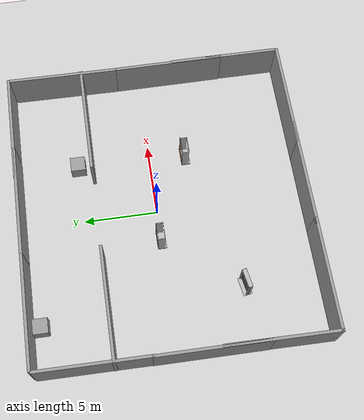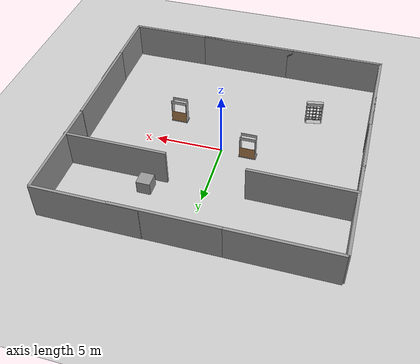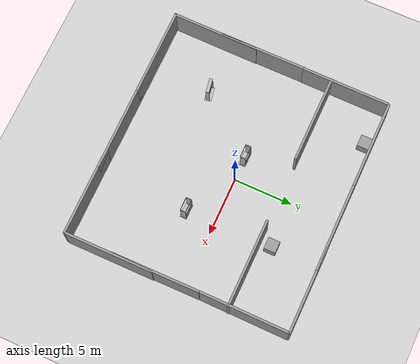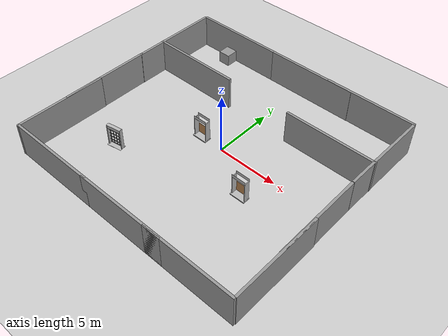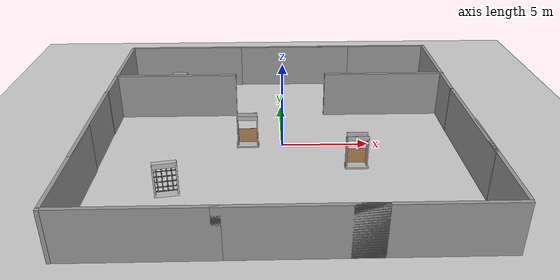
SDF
<sdf version="1.4">
 <world name="default">
  <light name="sun" type="directional">
   <pose>0 0 10 0 -0 0</pose>
   <diffuse>0.8 0.8 0.8 1</diffuse>
   <specular>0.2 0.2 0.2 1</specular>
   <attenuation>
    <range>1000</range>
    <constant>0.9</constant>
    <linear>0.01</linear>
    <quadratic>0.001</quadratic>
   </attenuation>
   <direction>-0.5 0.1 -0.9</direction>
  </light>
  <model name="ground_plane">
   <static>1</static>
   <link name="link">
    <collision name="collision">
     <geometry><plane><normal>0 0 1</normal><size>100 100</size></plane></geometry>
     <surface><friction><ode><mu>100</mu><mu2>50</mu2></ode></friction></surface>
    </collision>
    <visual name="visual">
     <cast_shadows>0</cast_shadows>
     <geometry><plane><normal>0 0 1</normal><size>100 100</size></plane></geometry>
     <material>
      <script><uri>file://media/materials/scripts/gazebo.material</uri><name>Gazebo/Grey</name></script>
     </material>
    </visual>
    <velocity_decay><linear>0</linear><angular>0</angular></velocity_decay>
   </link>
  </model>
  <physics type="ode">
   <max_step_size>0.001</max_step_size>
   <real_time_factor>1</real_time_factor>
   <real_time_update_rate>0</real_time_update_rate>
   <gravity>0 0 -9.8</gravity>
  </physics>
  <scene><ambient>0.4 0.4 0.4 1</ambient><background>0.7 0.7 0.7 1</background><shadows>1</shadows></scene>
  <spherical_coordinates>
   <surface_model>EARTH_WGS84</surface_model>
   <latitude_deg>0</latitude_deg>
   <longitude_deg>0</longitude_deg>
   <elevation>0</elevation>
   <heading_deg>0</heading_deg>
  </spherical_coordinates>
  <model name="grey_wall">
   <static>1</static>
   <link name="link">
    <pose>0 0 1.4 0 -0 0</pose>
    <collision name="collision"><geometry><box><size>7.5 0.2 2.8</size></box></geometry></collision>
    <visual name="visual">
     <cast_shadows>0</cast_shadows>
     <geometry><box><size>7.5 0.2 2.8</size></box></geometry>
     <material>
      <script>
       <uri>model://grey_wall/materials/scripts</uri>
       <uri>model://grey_wall/materials/textures</uri>
       <name>vrc/grey_wall</name>
      </script>
     </material>
    </visual>
    <velocity_decay><linear>0</linear><angular>0</angular></velocity_decay>
   </link>
   <pose>-6.37486 9.06322 0 0 -0 0</pose>
  </model>
  <model name="grey_wall_0">
   <static>1</static>
   <link name="link">
    <pose>0 0 1.4 0 -0 0</pose>
    <collision name="collision"><geometry><box><size>7.5 0.2 2.8</size></box></geometry></collision>
    <visual name="visual">
     <cast_shadows>0</cast_shadows>
     <geometry><box><size>7.5 0.2 2.8</size></box></geometry>
     <material>
      <script>
       <uri>model://grey_wall/materials/scripts</uri>
       <uri>model://grey_wall/materials/textures</uri>
       <name>vrc/grey_wall</name>
      </script>
     </material>
    </visual>
    <velocity_decay><linear>0</linear><angular>0</angular></velocity_decay>
   </link>
   <pose>1.12463 9.06218 0 0 -0 0</pose>
  </model>
  <model name="grey_wall_1">
   <static>1</static>
   <link name="link">
    <pose>0 0 1.4 0 -0 0</pose>
    <collision name="collision"><geometry><box><size>7.5 0.2 2.8</size></box></geometry></collision>
    <visual name="visual">
     <cast_shadows>0</cast_shadows>
     <geometry><box><size>7.5 0.2 2.8</size></box></geometry>
     <material>
      <script>
       <uri>model://grey_wall/materials/scripts</uri>
       <uri>model://grey_wall/materials/textures</uri>
       <name>vrc/grey_wall</name>
      </script>
     </material>
    </visual>
    <velocity_decay><linear>0</linear><angular>0</angular></velocity_decay>
   </link>
   <pose>6.47505 9.08721 0 0 -0 0</pose>
  </model>
  <model name="grey_wall_2">
   <static>1</static>
   <link name="link">
    <pose>0 0 1.4 0 -0 0</pose>
    <collision name="collision"><geometry><box><size>7.5 0.2 2.8</size></box></geometry></collision>
    <visual name="visual">
     <cast_shadows>0</cast_shadows>
     <geometry><box><size>7.5 0.2 2.8</size></box></geometry>
     <material>
      <script>
       <uri>model://grey_wall/materials/scripts</uri>
       <uri>model://grey_wall/materials/textures</uri>
       <name>vrc/grey_wall</name>
      </script>
     </material>
    </visual>
    <velocity_decay><linear>0</linear><angular>0</angular></velocity_decay>
   </link>
   <pose>-6.57172 -10 0 0 -0 0</pose>
  </model>
  <model name="grey_wall_3">
   <static>1</static>
   <link name="link">
    <pose>0 0 1.4 0 -0 0</pose>
    <collision name="collision"><geometry><box><size>7.5 0.2 2.8</size></box></geometry></collision>
    <visual name="visual">
     <cast_shadows>0</cast_shadows>
     <geometry><box><size>7.5 0.2 2.8</size></box></geometry>
     <material>
      <script>
       <uri>model://grey_wall/materials/scripts</uri>
       <uri>model://grey_wall/materials/textures</uri>
       <name>vrc/grey_wall</name>
      </script>
     </material>
    </visual>
    <velocity_decay><linear>0</linear><angular>0</angular></velocity_decay>
   </link>
   <pose>0.502464 -10 0 0 -0 0</pose>
  </model>
  <model name="grey_wall_4">
   <static>1</static>
   <link name="link">
    <pose>0 0 1.4 0 -0 0</pose>
    <collision name="collision"><geometry><box><size>7.5 0.2 2.8</size></box></geometry></collision>
    <visual name="visual">
     <cast_shadows>0</cast_shadows>
     <geometry><box><size>7.5 0.2 2.8</size></box></geometry>
     <material>
      <script>
       <uri>model://grey_wall/materials/scripts</uri>
       <uri>model://grey_wall/materials/textures</uri>
       <name>vrc/grey_wall</name>
      </script>
     </material>
    </visual>
    <velocity_decay><linear>0</linear><angular>0</angular></velocity_decay>
   </link>
   <pose>6.46119 -10 0 0 -0 0</pose>
  </model>
  <model name="grey_wall_5">
   <static>1</static>
   <link name="link">
    <pose>0 0 1.4 0 -0 0</pose>
    <collision name="collision"><geometry><box><size>7.5 0.2 2.8</size></box></geometry></collision>
    <visual name="visual">
     <cast_shadows>0</cast_shadows>
     <geometry><box><size>7.5 0.2 2.8</size></box></geometry>
     <material>
      <script>
       <uri>model://grey_wall/materials/scripts</uri>
       <uri>model://grey_wall/materials/textures</uri>
       <name>vrc/grey_wall</name>
      </script>
     </material>
    </visual>
    <velocity_decay><linear>0</linear><angular>0</angular></velocity_decay>
   </link>
   <pose>10.1266 5.31585 0 0 0 -1.58058</pose>
  </model>
  <model name="grey_wall_6">
   <static>1</static>
   <link name="link">
    <pose>0 0 1.4 0 -0 0</pose>
    <collision name="collision"><geometry><box><size>7.5 0.2 2.8</size></box></geometry></collision>
    <visual name="visual">
     <cast_shadows>0</cast_shadows>
     <geometry><box><size>7.5 0.2 2.8</size></box></geometry>
     <material>
      <script>
       <uri>model://grey_wall/materials/scripts</uri>
       <uri>model://grey_wall/materials/textures</uri>
       <name>vrc/grey_wall</name>
      </script>
     </material>
    </visual>
    <velocity_decay><linear>0</linear><angular>0</angular></velocity_decay>
   </link>
   <pose>10.1134 -2.21796 0 0 0 -1.566</pose>
  </model>
  <model name="grey_wall_7">
   <static>1</static>
   <link name="link">
    <pose>0 0 1.4 0 -0 0</pose>
    <collision name="collision"><geometry><box><size>7.5 0.2 2.8</size></box></geometry></collision>
    <visual name="visual">
     <cast_shadows>0</cast_shadows>
     <geometry><box><size>7.5 0.2 2.8</size></box></geometry>
     <material>
      <script>
       <uri>model://grey_wall/materials/scripts</uri>
       <uri>model://grey_wall/materials/textures</uri>
       <name>vrc/grey_wall</name>
      </script>
     </material>
    </visual>
    <velocity_decay><linear>0</linear><angular>0</angular></velocity_decay>
   </link>
   <pose>10.161 -6.18012 0 0 -0 1.5699</pose>
  </model>
  <model name="grey_wall_8">
   <static>1</static>
   <link name="link">
    <pose>0 0 1.4 0 -0 0</pose>
    <collision name="collision"><geometry><box><size>7.5 0.2 2.8</size></box></geometry></collision>
    <visual name="visual">
     <cast_shadows>0</cast_shadows>
     <geometry><box><size>7.5 0.2 2.8</size></box></geometry>
     <material>
      <script>
       <uri>model://grey_wall/materials/scripts</uri>
       <uri>model://grey_wall/materials/textures</uri>
       <name>vrc/grey_wall</name>
      </script>
     </material>
    </visual>
    <velocity_decay><linear>0</linear><angular>0</angular></velocity_decay>
   </link>
   <pose>-10.1642 5.26629 0 0 0 -1.57839</pose>
  </model>
  <model name="grey_wall_9">
   <static>1</static>
   <link name="link">
    <pose>0 0 1.4 0 -0 0</pose>
    <collision name="collision"><geometry><box><size>7.5 0.2 2.8</size></box></geometry></collision>
    <visual name="visual">
     <cast_shadows>0</cast_shadows>
     <geometry><box><size>7.5 0.2 2.8</size></box></geometry>
     <material>
      <script>
       <uri>model://grey_wall/materials/scripts</uri>
       <uri>model://grey_wall/materials/textures</uri>
       <name>vrc/grey_wall</name>
      </script>
     </material>
    </visual>
    <velocity_decay><linear>0</linear><angular>0</angular></velocity_decay>
   </link>
   <pose>-10.2248 -2.07732 0 0 0 -1.57362</pose>
  </model>
  <model name="grey_wall_10">
   <static>1</static>
   <link name="link">
    <pose>0 0 1.4 0 -0 0</pose>
    <collision name="collision"><geometry><box><size>7.5 0.2 2.8</size></box></geometry></collision>
    <visual name="visual">
     <cast_shadows>0</cast_shadows>
     <geometry><box><size>7.5 0.2 2.8</size></box></geometry>
     <material>
      <script>
       <uri>model://grey_wall/materials/scripts</uri>
       <uri>model://grey_wall/materials/textures</uri>
       <name>vrc/grey_wall</name>
      </script>
     </material>
    </visual>
    <velocity_decay><linear>0</linear><angular>0</angular></velocity_decay>
   </link>
   <pose>-10.2268 -6.36026 -0 0 0 -1.58184</pose>
  </model>
  <model name="grey_wall_11">
   <static>1</static>
   <link name="link">
    <pose>0 0 1.4 0 -0 0</pose>
    <collision name="collision"><geometry><box><size>7.5 0.2 2.8</size></box></geometry></collision>
    <visual name="visual">
     <cast_shadows>0</cast_shadows>
     <geometry><box><size>7.5 0.2 2.8</size></box></geometry>
     <material>
      <script>
       <uri>model://grey_wall/materials/scripts</uri>
       <uri>model://grey_wall/materials/textures</uri>
       <name>vrc/grey_wall</name>
      </script>
     </material>
    </visual>
    <velocity_decay><linear>0</linear><angular>0</angular></velocity_decay>
   </link>
   <pose>-6.53777 4 0 0 -0 0</pose>
  </model>
  <model name="grey_wall_12">
   <static>1</static>
   <link name="link">
    <pose>0 0 1.4 0 -0 0</pose>
    <collision name="collision"><geometry><box><size>7.5 0.2 2.8</size></box></geometry></collision>
    <visual name="visual">
     <cast_shadows>0</cast_shadows>
     <geometry><box><size>7.5 0.2 2.8</size></box></geometry>
     <material>
      <script>
       <uri>model://grey_wall/materials/scripts</uri>
       <uri>model://grey_wall/materials/textures</uri>
       <name>vrc/grey_wall</name>
      </script>
     </material>
    </visual>
    <velocity_decay><linear>0</linear><angular>0</angular></velocity_decay>
   </link>
   <pose>6.50522 4 0 0 -0 0</pose>
  </model>
  <model name="frc2016_drawbridge">
   <link name="base">
    <inertial>
     <mass>10</mass>
     <pose>0 0 1 0 -0 0</pose>
     <inertia><ixx>3.64907</ixx><ixy>0</ixy><ixz>0</ixz><iyy>4.67075</iyy><iyz>0</iyz><izz>1.66649</izz></inertia>
    </inertial>
    <visual name="platform">
     <pose>0 0 0.0425 0 -0 0</pose>
     <geometry><box><size>1.27 0.5969 0.085</size></box></geometry>
    </visual>
    <collision name="platform">
     <pose>0 0 0.0425 0 -0 0</pose>
     <geometry><box><size>1.27 0.5969 0.085</size></box></geometry>
    </collision>
    <visual name="right_wall">
     <pose>0.55879 0.04444 0.889 0 -0 0</pose>
     <geometry><box><size>0.05715 0.45698 1.77165</size></box></geometry>
    </visual>
    <collision name="right_wall">
     <pose>0.55879 0.04444 0.889 0 -0 0</pose>
     <geometry><box><size>0.05715 0.45698 1.77165</size></box></geometry>
    </collision>
    <visual name="left_wall">
     <pose>-0.55879 0.04444 0.889 0 -0 0</pose>
     <geometry><box><size>0.05715 0.45698 1.77165</size></box></geometry>
    </visual>
    <collision name="left_wall">
     <pose>-0.55879 0.04444 0.889 0 -0 0</pose>
     <geometry><box><size>0.05715 0.45698 1.77165</size></box></geometry>
    </collision>
    <visual name="front_upper_wall">
     <pose>0 0.27611 1.84286 0 -0 0</pose>
     <geometry><box><size>1.1557 0.006347 0.254</size></box></geometry>
    </visual>
    <collision name="front_upper_wall">
     <pose>0 0.27611 1.84286 0 -0 0</pose>
     <geometry><box><size>1.1557 0.006347 0.254</size></box></geometry>
    </collision>
    <visual name="back_upper_wall">
     <pose>0 -0.18722 1.84286 0 -0 0</pose>
     <geometry><box><size>1.1557 0.006347 0.254</size></box></geometry>
    </visual>
    <collision name="back_upper_wall">
     <pose>0 -0.18722 1.84286 0 -0 0</pose>
     <geometry><box><size>1.1557 0.006347 0.254</size></box></geometry>
    </collision>
    <velocity_decay><linear>0</linear><angular>0</angular></velocity_decay>
   </link>
   <link name="bridge">
    <pose>0 0.28245 0.50577 0 -0 0</pose>
    <inertial>
     <mass>2</mass>
     <pose>0 -0.28245 -0.50577 0 -0 0</pose>
     <inertia>
      <ixx>0.139361</ixx>
      <ixy>0</ixy>
      <ixz>0</ixz>
      <iyy>0.357088</iyy>
      <iyz>0</iyz>
      <izz>0.217741</izz>
     </inertia>
    </inertial>
    <visual name="visual">
     <geometry><box><size>1.14298 0.006347 0.9144</size></box></geometry>
     <material><script><name>Gazebo/WoodFloor</name><uri>__default__</uri></script></material>
    </visual>
    <collision name="collision"><geometry><box><size>1.14298 0.006347 0.9144</size></box></geometry></collision>
    <velocity_decay><linear>0</linear><angular>0</angular></velocity_decay>
   </link>
   <joint name="bridge_joint" type="revolute">
    <pose>0 0 -0.4172 0 -0 0</pose>
    <parent>base</parent>
    <child>bridge</child>
    <axis><xyz>1 0 0</xyz><limit><lower>-2</lower><upper>0</upper></limit></axis>
   </joint>
   <pose>-1.99989 -0.00078 1e-06 8.27181e-25 -1e-06 0.004125</pose>
   <static>0</static>
  </model>
  <model name="frc2016_drawbridge_0">
   <link name="base">
    <inertial>
     <mass>10</mass>
     <pose>0 0 1 0 -0 0</pose>
     <inertia><ixx>3.64907</ixx><ixy>0</ixy><ixz>0</ixz><iyy>4.67075</iyy><iyz>0</iyz><izz>1.66649</izz></inertia>
    </inertial>
    <visual name="platform">
     <pose>0 0 0.0425 0 -0 0</pose>
     <geometry><box><size>1.27 0.5969 0.085</size></box></geometry>
    </visual>
    <collision name="platform">
     <pose>0 0 0.0425 0 -0 0</pose>
     <geometry><box><size>1.27 0.5969 0.085</size></box></geometry>
    </collision>
    <visual name="right_wall">
     <pose>0.55879 0.04444 0.889 0 -0 0</pose>
     <geometry><box><size>0.05715 0.45698 1.77165</size></box></geometry>
    </visual>
    <collision name="right_wall">
     <pose>0.55879 0.04444 0.889 0 -0 0</pose>
     <geometry><box><size>0.05715 0.45698 1.77165</size></box></geometry>
    </collision>
    <visual name="left_wall">
     <pose>-0.55879 0.04444 0.889 0 -0 0</pose>
     <geometry><box><size>0.05715 0.45698 1.77165</size></box></geometry>
    </visual>
    <collision name="left_wall">
     <pose>-0.55879 0.04444 0.889 0 -0 0</pose>
     <geometry><box><size>0.05715 0.45698 1.77165</size></box></geometry>
    </collision>
    <visual name="front_upper_wall">
     <pose>0 0.27611 1.84286 0 -0 0</pose>
     <geometry><box><size>1.1557 0.006347 0.254</size></box></geometry>
    </visual>
    <collision name="front_upper_wall">
     <pose>0 0.27611 1.84286 0 -0 0</pose>
     <geometry><box><size>1.1557 0.006347 0.254</size></box></geometry>
    </collision>
    <visual name="back_upper_wall">
     <pose>0 -0.18722 1.84286 0 -0 0</pose>
     <geometry><box><size>1.1557 0.006347 0.254</size></box></geometry>
    </visual>
    <collision name="back_upper_wall">
     <pose>0 -0.18722 1.84286 0 -0 0</pose>
     <geometry><box><size>1.1557 0.006347 0.254</size></box></geometry>
    </collision>
    <velocity_decay><linear>0</linear><angular>0</angular></velocity_decay>
   </link>
   <link name="bridge">
    <pose>0 0.28245 0.50577 0 -0 0</pose>
    <inertial>
     <mass>2</mass>
     <pose>0 -0.28245 -0.50577 0 -0 0</pose>
     <inertia>
      <ixx>0.139361</ixx>
      <ixy>0</ixy>
      <ixz>0</ixz>
      <iyy>0.357088</iyy>
      <iyz>0</iyz>
      <izz>0.217741</izz>
     </inertia>
    </inertial>
    <visual name="visual">
     <geometry><box><size>1.14298 0.006347 0.9144</size></box></geometry>
     <material><script><name>Gazebo/WoodFloor</name><uri>__default__</uri></script></material>
    </visual>
    <collision name="collision"><geometry><box><size>1.14298 0.006347 0.9144</size></box></geometry></collision>
    <velocity_decay><linear>0</linear><angular>0</angular></velocity_decay>
   </link>
   <joint name="bridge_joint" type="revolute">
    <pose>0 0 -0.4172 0 -0 0</pose>
    <parent>base</parent>
    <child>bridge</child>
    <axis><xyz>1 0 0</xyz><limit><lower>-2</lower><upper>0</upper></limit></axis>
   </joint>
   <pose>3.99908 -2.50384 0 -4.1359e-25 -1e-06 0.003646</pose>
   <static>0</static>
  </model>
  <model name="frc2016_portcullis">
   <link name="base">
    <inertial>
     <mass>50</mass>
     <pose>0 0 1.02941 0 -0 0</pose>
     <inertia><ixx>3.81711</ixx><ixy>0</ixy><ixz>0</ixz><iyy>4.87698</iyy><iyz>0</iyz><izz>1.6283</izz></inertia>
    </inertial>
    <visual name="platform">
     <pose>0 0 0.07284 0 -0 0</pose>
     <geometry><box><size>1.27 0.5842 0.003175</size></box></geometry>
    </visual>
    <collision name="platform">
     <pose>0 0 0.07284 0 -0 0</pose>
     <geometry><box><size>1.27 0.5842 0.003175</size></box></geometry>
    </collision>
    <visual name="left_column">
     <pose>0.59284 0 0.99042 0 -0 0</pose>
     <geometry><box><size>0.08375 0.28575 1.83198</size></box></geometry>
    </visual>
    <collision name="left_column">
     <pose>0.59284 0 0.99042 0 -0 0</pose>
     <geometry><box><size>0.08375 0.28575 1.83198</size></box></geometry>
    </collision>
    <visual name="right_column">
     <pose>-0.57759 0 0.99042 0 -0 0</pose>
     <geometry><box><size>0.08375 0.28575 1.83198</size></box></geometry>
    </visual>
    <collision name="right_column">
     <pose>-0.57759 0 0.99042 0 -0 0</pose>
     <geometry><box><size>0.08375 0.28575 1.83198</size></box></geometry>
    </collision>
    <visual name="top">
     <pose>-0.00034 0 1.77722 0 -0 0</pose>
     <geometry><box><size>1.22962 0.28575 0.26657</size></box></geometry>
    </visual>
    <collision name="top">
     <pose>-0.00034 0 1.77722 0 -0 0</pose>
     <geometry><box><size>1.22962 0.28575 0.26657</size></box></geometry>
    </collision>
    <visual name="castor1">
     <pose>-0.45651 -0.16234 0.03272 0 -0 0</pose>
     <geometry><sphere><radius>0.03272</radius></sphere></geometry>
    </visual>
    <collision name="castor1">
     <pose>-0.45651 -0.16234 0.03272 0 -0 0</pose>
     <geometry><sphere><radius>0.03272</radius></sphere></geometry>
    </collision>
    <visual name="castor2">
     <pose>-0.27883 0.21836 0.03272 0 -0 0</pose>
     <geometry><sphere><radius>0.03272</radius></sphere></geometry>
    </visual>
    <collision name="castor2">
     <pose>-0.27883 0.21836 0.03272 0 -0 0</pose>
     <geometry><sphere><radius>0.03272</radius></sphere></geometry>
    </collision>
    <visual name="castor3">
     <pose>0.28083 0.21906 0.03272 0 -0 0</pose>
     <geometry><sphere><radius>0.03272</radius></sphere></geometry>
    </visual>
    <collision name="castor3">
     <pose>0.28083 0.21906 0.03272 0 -0 0</pose>
     <geometry><sphere><radius>0.03272</radius></sphere></geometry>
    </collision>
    <visual name="castor4">
     <pose>0.45871 -0.16186 0.03272 0 -0 0</pose>
     <geometry><sphere><radius>0.03272</radius></sphere></geometry>
    </visual>
    <collision name="castor4">
     <pose>0.45871 -0.16186 0.03272 0 -0 0</pose>
     <geometry><sphere><radius>0.03272</radius></sphere></geometry>
    </collision>
    <velocity_decay><linear>0</linear><angular>0</angular></velocity_decay>
   </link>
   <link name="gate">
    <pose>-0.0287 0.02885 0.93327 0 -0 0</pose>
    <inertial>
     <mass>2</mass>
     <inertia><ixx>3.81711</ixx><ixy>0</ixy><ixz>0</ixz><iyy>4.87698</iyy><iyz>0</iyz><izz>1.6283</izz></inertia>
    </inertial>
    <collision name="collision"><geometry><box><size>1.1938 0.02496 1.45732</size></box></geometry></collision>
    <visual name="horz_1">
     <pose>0 0 -0.70326 0 -0 0</pose>
     <geometry><box><size>1.1938 0.02496 0.0508</size></box></geometry>
     <material><ambient>0.4 0.4 0.4 1</ambient><diffuse>0.4 0.4 0.4 1</diffuse></material>
    </visual>
    <visual name="horz_2">
     <pose>0 0 -0.44926 0 -0 0</pose>
     <geometry><box><size>1.1938 0.02496 0.0508</size></box></geometry>
     <material><ambient>0.4 0.4 0.4 1</ambient><diffuse>0.4 0.4 0.4 1</diffuse></material>
    </visual>
    <visual name="horz_3">
     <pose>0 0 -0.14517 0 -0 0</pose>
     <geometry><box><size>1.1938 0.02496 0.0508</size></box></geometry>
     <material><ambient>0.4 0.4 0.4 1</ambient><diffuse>0.4 0.4 0.4 1</diffuse></material>
    </visual>
    <visual name="horz_4">
     <pose>0 0 0.16034 0 -0 0</pose>
     <geometry><box><size>1.1938 0.02496 0.0508</size></box></geometry>
     <material><ambient>0.4 0.4 0.4 1</ambient><diffuse>0.4 0.4 0.4 1</diffuse></material>
    </visual>
    <visual name="horz_5">
     <pose>0 0 0.46514 0 -0 0</pose>
     <geometry><box><size>1.1938 0.02496 0.0508</size></box></geometry>
     <material><ambient>0.4 0.4 0.4 1</ambient><diffuse>0.4 0.4 0.4 1</diffuse></material>
    </visual>
    <visual name="horz_6">
     <pose>0 0 0.72994 0 -0 0</pose>
     <geometry><box><size>1.1938 0.02496 0.0508</size></box></geometry>
     <material><ambient>0.4 0.4 0.4 1</ambient><diffuse>0.4 0.4 0.4 1</diffuse></material>
    </visual>
    <visual name="vert_1">
     <pose>-0.58448 0 0 0 -0 0</pose>
     <geometry><box><size>0.02495 0.02496 1.45732</size></box></geometry>
     <material><ambient>0.4 0.4 0.4 1</ambient><diffuse>0.4 0.4 0.4 1</diffuse></material>
    </visual>
    <visual name="vert_2">
     <pose>-0.38128 0 0 0 -0 0</pose>
     <geometry><box><size>0.0508 0.02496 1.45732</size></box></geometry>
     <material><ambient>0.4 0.4 0.4 1</ambient><diffuse>0.4 0.4 0.4 1</diffuse></material>
    </visual>
    <visual name="vert_3">
     <pose>-0.12728 0 0 0 -0 0</pose>
     <geometry><box><size>0.0508 0.02496 1.45732</size></box></geometry>
     <material><ambient>0.4 0.4 0.4 1</ambient><diffuse>0.4 0.4 0.4 1</diffuse></material>
    </visual>
    <visual name="vert_4">
     <pose>0.12672 0 0 0 -0 0</pose>
     <geometry><box><size>0.0508 0.02496 1.45732</size></box></geometry>
     <material><ambient>0.4 0.4 0.4 1</ambient><diffuse>0.4 0.4 0.4 1</diffuse></material>
    </visual>
    <visual name="vert_5">
     <pose>0.38072 0 0 0 -0 0</pose>
     <geometry><box><size>0.0508 0.02496 1.45732</size></box></geometry>
     <material><ambient>0.4 0.4 0.4 1</ambient><diffuse>0.4 0.4 0.4 1</diffuse></material>
    </visual>
    <visual name="vert_6">
     <pose>0.58392 0 0 0 -0 0</pose>
     <geometry><box><size>0.02495 0.02496 1.45732</size></box></geometry>
     <material><ambient>0.4 0.4 0.4 1</ambient><diffuse>0.4 0.4 0.4 1</diffuse></material>
    </visual>
    <velocity_decay><linear>0</linear><angular>0</angular></velocity_decay>
   </link>
   <joint name="joint" type="prismatic">
    <parent>base</parent>
    <child>gate</child>
    <axis><xyz>0 0 1</xyz><limit><lower>0</lower><upper>1</upper></limit></axis>
   </joint>
   <pose>-5.98511 -5.00746 -1e-06 0 1e-06 0.174808</pose>
   <static>0</static>
  </model>
  <model name="unit_box_1">
   <pose>-7 8.45126 0.5 0 -0 0</pose>
   <link name="link">
    <inertial>
     <mass>1</mass>
     <inertia><ixx>1</ixx><ixy>0</ixy><ixz>0</ixz><iyy>1</iyy><iyz>0</iyz><izz>1</izz></inertia>
    </inertial>
    <collision name="collision"><geometry><box><size>1 1 1</size></box></geometry></collision>
    <visual name="visual">
     <geometry><box><size>1 1 1</size></box></geometry>
     <material>
      <script><uri>file://media/materials/scripts/gazebo.material</uri><name>Gazebo/Grey</name></script>
     </material>
    </visual>
    <velocity_decay><linear>0</linear><angular>0</angular></velocity_decay>
   </link>
   <static>0</static>
  </model>
  <model name="unit_box_2">
   <pose>4 5 0.5 0 -0 0</pose>
   <link name="link">
    <inertial>
     <mass>1</mass>
     <inertia><ixx>1</ixx><ixy>0</ixy><ixz>0</ixz><iyy>1</iyy><iyz>0</iyz><izz>1</izz></inertia>
    </inertial>
    <collision name="collision"><geometry><box><size>1 1 1</size></box></geometry></collision>
    <visual name="visual">
     <geometry><box><size>1 1 1</size></box></geometry>
     <material>
      <script><uri>file://media/materials/scripts/gazebo.material</uri><name>Gazebo/Grey</name></script>
     </material>
    </visual>
    <velocity_decay><linear>0</linear><angular>0</angular></velocity_decay>
   </link>
   <static>0</static>
  </model>
 </world>
</sdf>
